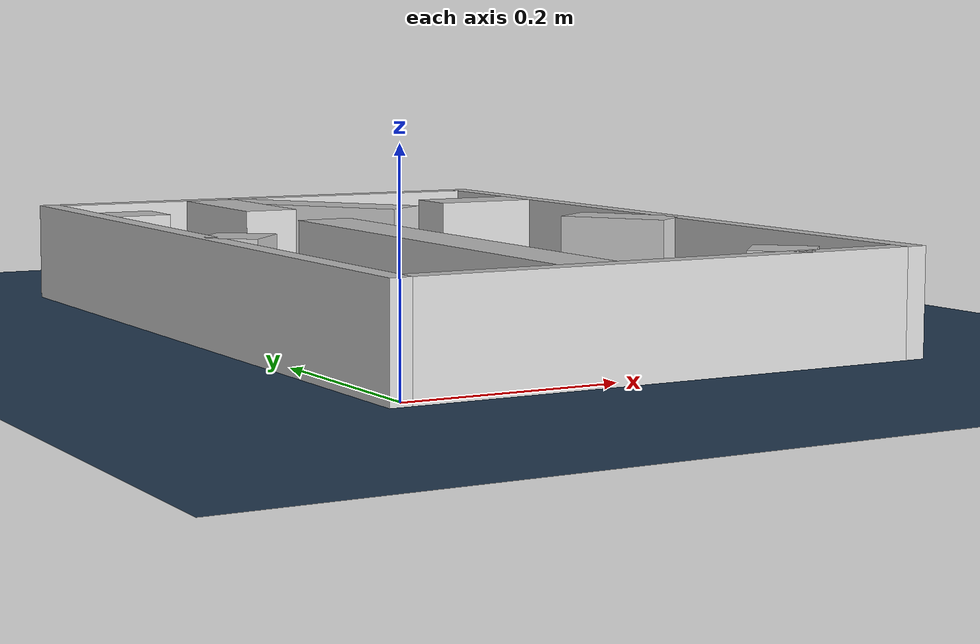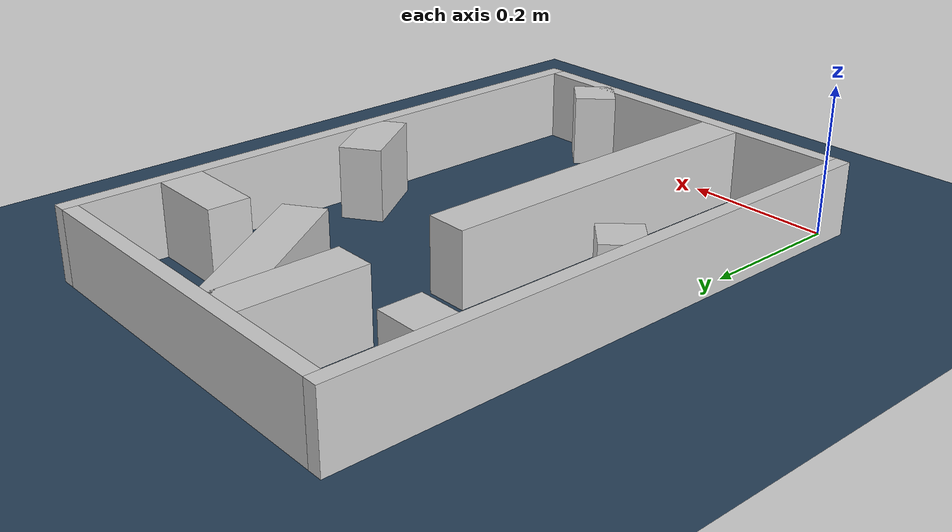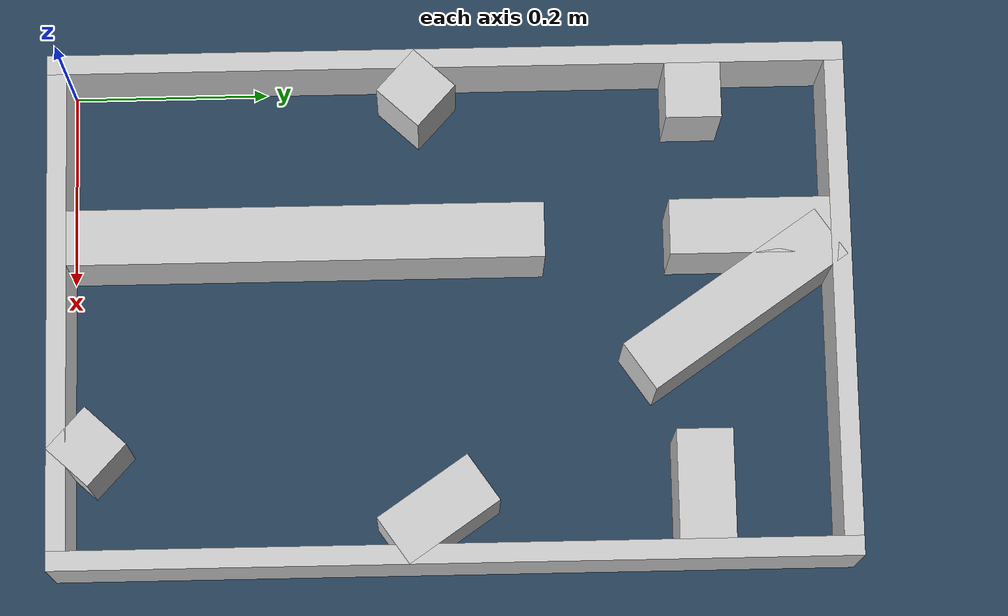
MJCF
<?xml version="1.0" ?>
<mujoco model="generated_real_template">
  <compiler angle="degree"/>
  <option timestep="0.002" integrator="implicitfast" iterations="100" cone="elliptic"/>
  <default>
    <geom density="1"/>
  </default>
  <asset>
    <texture builtin="gradient" height="3072" rgb1="0.3 0.5 0.7" rgb2="0 0 0" type="skybox" width="512"/>
    <texture builtin="checker" height="300" mark="edge" markrgb="0.8 0.8 0.8" name="groundplane" rgb1="0.2 0.3 0.4" rgb2="0.1 0.2 0.3" type="2d" width="300"/>
    <material name="groundplane" reflectance="0.2" texrepeat="5 5" texture="groundplane" texuniform="true"/>
  </asset>
  <worldbody>
    <light dir="0 0 -1" directional="true" pos="0 0 1.5"/>
    <geom name="floor" type="plane" condim="4" friction="0.5 0.005 0.001" material="groundplane" size="0 0 0.05"/>
    <body name="walls">
      <geom name="wall_boundary_left" type="box" condim="4" friction="1.0 0.005 0.0001" rgba="0.8 0.8 0.8 1" pos="-0.010000 0.387500 0.050000" euler="0 0 0.000000" size="0.010000 0.407500 0.050000"/>
      <geom name="wall_boundary_right" type="box" condim="4" friction="1.0 0.005 0.0001" rgba="0.8 0.8 0.8 1" pos="0.500000 0.387500 0.050000" euler="0 0 0.000000" size="0.010000 0.407500 0.050000"/>
      <geom name="wall_boundary_bottom" type="box" condim="4" friction="1.0 0.005 0.0001" rgba="0.8 0.8 0.8 1" pos="0.245000 -0.010000 0.050000" euler="0 0 0.000000" size="0.245000 0.010000 0.050000"/>
      <geom name="wall_boundary_top" type="box" condim="4" friction="1.0 0.005 0.0001" rgba="0.8 0.8 0.8 1" pos="0.245000 0.785000 0.050000" euler="0 0 0.000000" size="0.245000 0.010000 0.050000"/>
      <geom name="wall_inner_1_1" type="box" condim="4" friction="1.0 0.005 0.0001" rgba="0.8 0.8 0.8 1" pos="0.021026 0.356872 0.050000" euler="0 0 -42.721427" size="0.028620 0.028500 0.050000"/>
      <geom name="wall_inner_1_2" type="box" condim="4" friction="1.0 0.005 0.0001" rgba="0.8 0.8 0.8 1" pos="0.385358 0.020423 0.050000" euler="0 0 -42.721427" size="0.028720 0.028500 0.050000"/>
      <geom name="wall_inner_2_1" type="box" condim="4" friction="1.0 0.005 0.0001" rgba="0.8 0.8 0.8 1" pos="0.171636 0.242356 0.050000" euler="0 0 90.000000" size="0.242356 0.028500 0.050000"/>
      <geom name="wall_inner_2_2" type="box" condim="4" friction="1.0 0.005 0.0001" rgba="0.8 0.8 0.8 1" pos="0.171636 0.693176 0.050000" euler="0 0 90.000000" size="0.081824 0.028500 0.050000"/>
      <geom name="wall_inner_3_1" type="box" condim="4" friction="1.0 0.005 0.0001" rgba="0.8 0.8 0.8 1" pos="0.247306 0.676009 0.050000" euler="0 0 -55.641883" size="0.119913 0.028500 0.050000"/>
      <geom name="wall_inner_3_2" type="box" condim="4" friction="1.0 0.005 0.0001" rgba="0.8 0.8 0.8 1" pos="0.455126 0.372019 0.050000" euler="0 0 -55.641883" size="0.055541 0.028500 0.050000"/>
      <geom name="wall_inner_4_1" type="box" condim="4" friction="1.0 0.005 0.0001" rgba="0.8 0.8 0.8 1" pos="0.028811 0.639969 0.050000" euler="0 0 0.000000" size="0.028811 0.028500 0.050000"/>
      <geom name="wall_inner_4_2" type="box" condim="4" friction="1.0 0.005 0.0001" rgba="0.8 0.8 0.8 1" pos="0.434524 0.639969 0.050000" euler="0 0 0.000000" size="0.055476 0.028500 0.050000"/>
    </body>
  </worldbody>
</mujoco>
